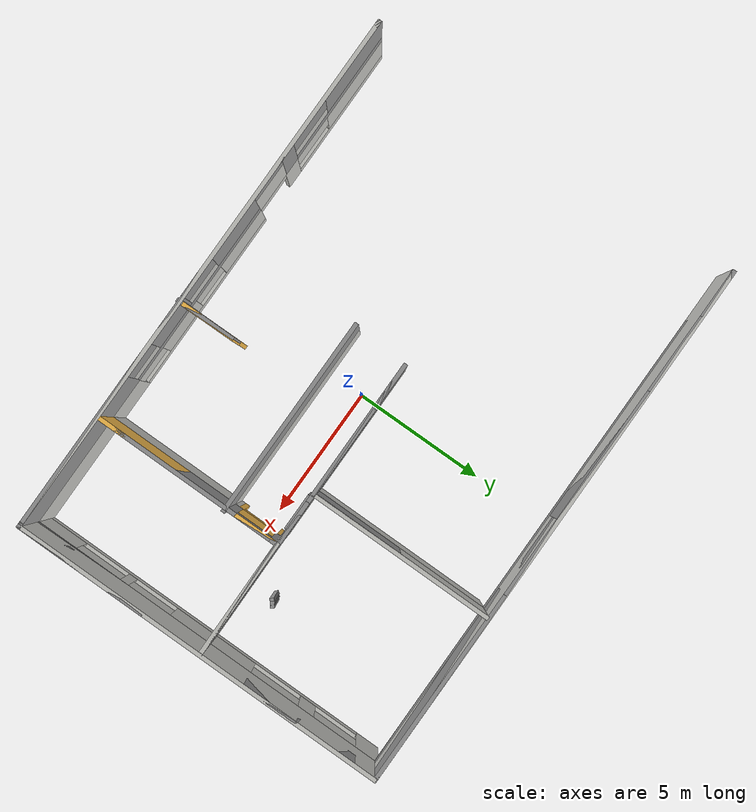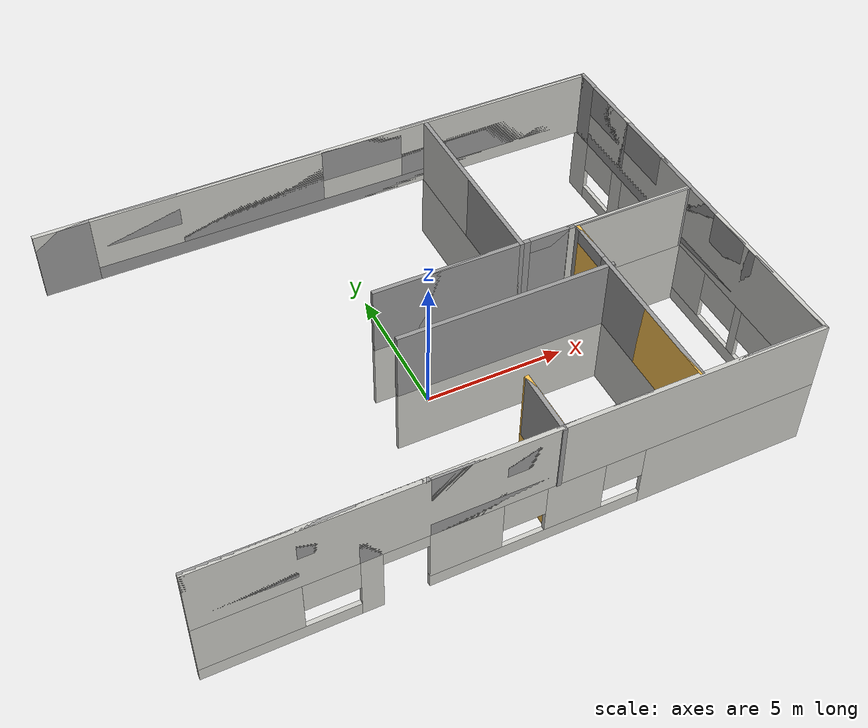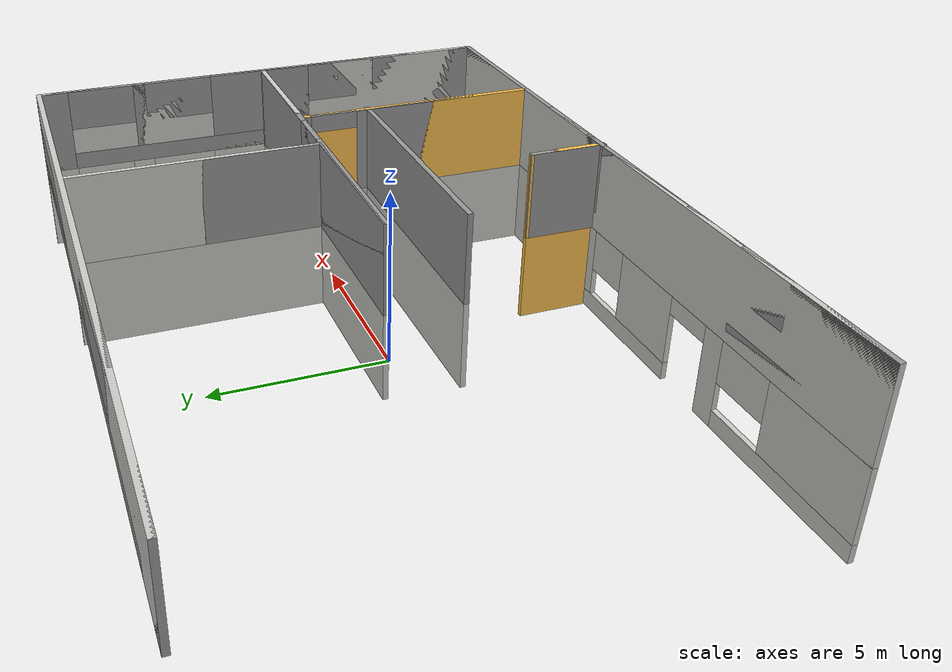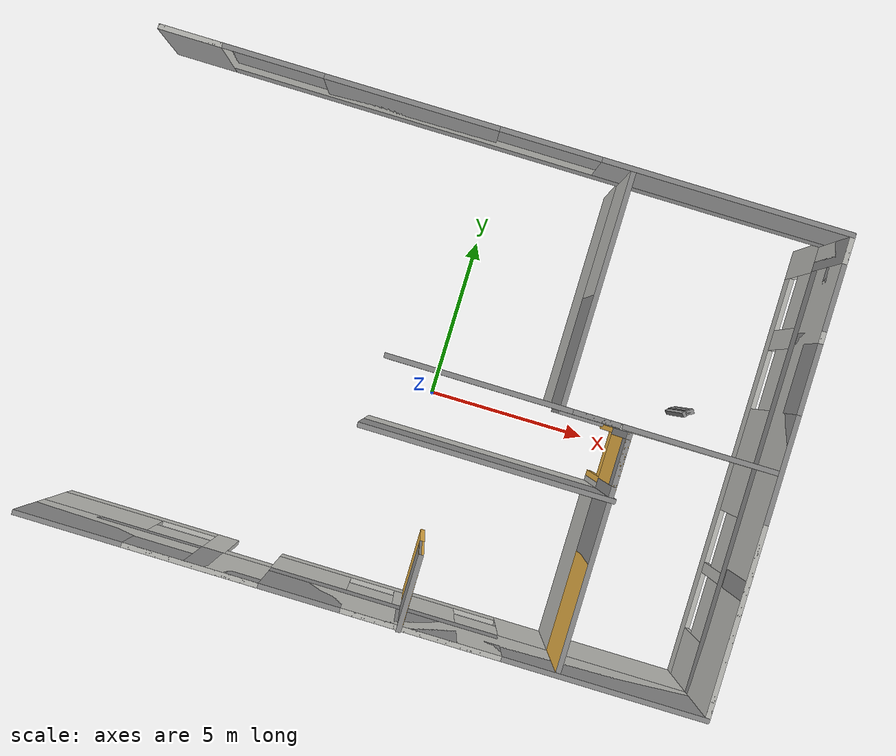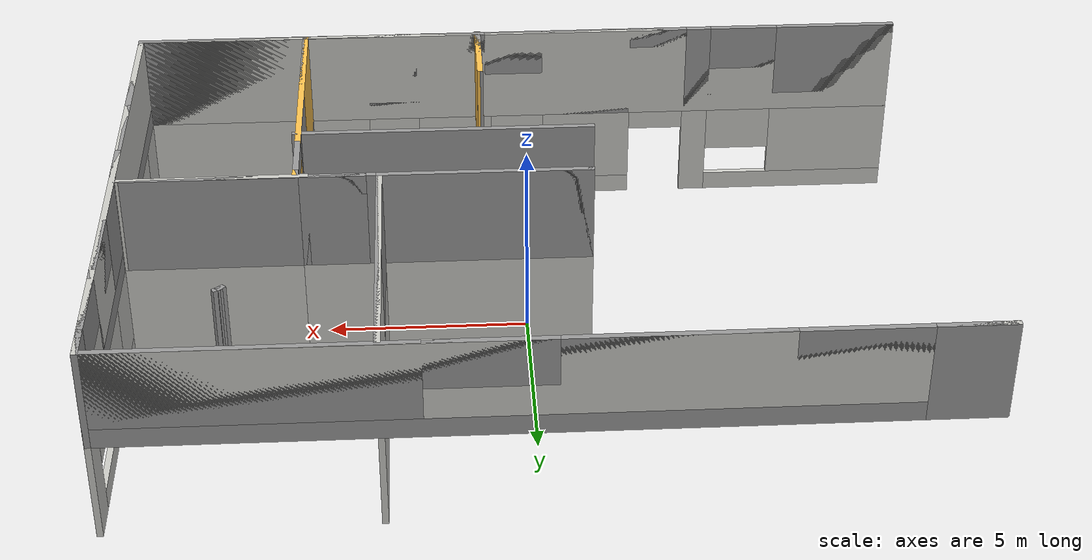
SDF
<sdf version="1.6">
 <model name="myProjectBuilding">
  <pose>-0.140832 0.553642 0 0 -0 0</pose>
  <link name="Door_9">
   <collision name="Door_9_Collision">
    <geometry><box><size>1.41879 0.2 2</size></box></geometry>
    <pose>0 0 1 0 -0 0</pose>
   </collision>
   <visual name="Door_9_Visual">
    <pose>0 0 1 0 -0 0</pose>
    <geometry><box><size>1.41879 0.2 2</size></box></geometry>
    <material>
     <script><uri>file://media/materials/scripts/gazebo.material</uri><name>Gazebo/Grey</name></script>
    </material>
   </visual>
   <pose>4.70443 0.050341 0 0 -0 0</pose>
  </link>
  <link name="Wall_1">
   <pose>10.0698 0.020848 0 0 -0 -1.5708</pose>
   <visual name="Wall_1_Visual_0">
    <pose>-6.65077 0 1.25 0 -0 0</pose>
    <geometry><box><size>0.948468 0.15 2.5</size></box></geometry>
    <material>
     <script><uri>file://media/materials/scripts/gazebo.material</uri><name>Gazebo/CeilingTiled</name></script>
     <ambient>1 1 1 1</ambient>
    </material>
    <meta><layer>0</layer></meta>
   </visual>
   <collision name="Wall_1_Collision_0">
    <geometry><box><size>0.948468 0.15 2.5</size></box></geometry>
    <pose>-6.65077 0 1.25 0 -0 0</pose>
   </collision>
   <visual name="Wall_1_Visual_1">
    <pose>0.474234 0 0.25 0 -0 0</pose>
    <geometry><box><size>13.3015 0.15 0.5</size></box></geometry>
    <material>
     <script><uri>file://media/materials/scripts/gazebo.material</uri><name>Gazebo/CeilingTiled</name></script>
     <ambient>1 1 1 1</ambient>
    </material>
    <meta><layer>0</layer></meta>
   </visual>
   <collision name="Wall_1_Collision_1">
    <geometry><box><size>13.3015 0.15 0.5</size></box></geometry>
    <pose>0.474234 0 0.25 0 -0 0</pose>
   </collision>
   <visual name="Wall_1_Visual_2">
    <pose>-4.11639 0 1.5 0 -0 0</pose>
    <geometry><box><size>0.652621 0.15 2</size></box></geometry>
    <material>
     <script><uri>file://media/materials/scripts/gazebo.material</uri><name>Gazebo/CeilingTiled</name></script>
     <ambient>1 1 1 1</ambient>
    </material>
    <meta><layer>0</layer></meta>
   </visual>
   <collision name="Wall_1_Collision_2">
    <geometry><box><size>0.652621 0.15 2</size></box></geometry>
    <pose>-4.11639 0 1.5 0 -0 0</pose>
   </collision>
   <visual name="Wall_1_Visual_3">
    <pose>-0.168769 0 1.5 0 -0 0</pose>
    <geometry><box><size>3.35994 0.15 2</size></box></geometry>
    <material>
     <script><uri>file://media/materials/scripts/gazebo.material</uri><name>Gazebo/CeilingTiled</name></script>
     <ambient>1 1 1 1</ambient>
    </material>
    <meta><layer>0</layer></meta>
   </visual>
   <collision name="Wall_1_Collision_3">
    <geometry><box><size>3.35994 0.15 2</size></box></geometry>
    <pose>-0.168769 0 1.5 0 -0 0</pose>
   </collision>
   <visual name="Wall_1_Visual_4">
    <pose>3.42421 0 1.5 0 -0 0</pose>
    <geometry><box><size>0.342006 0.15 2</size></box></geometry>
    <material>
     <script><uri>file://media/materials/scripts/gazebo.material</uri><name>Gazebo/CeilingTiled</name></script>
     <ambient>1 1 1 1</ambient>
    </material>
    <meta><layer>0</layer></meta>
   </visual>
   <collision name="Wall_1_Collision_4">
    <geometry><box><size>0.342006 0.15 2</size></box></geometry>
    <pose>3.42421 0 1.5 0 -0 0</pose>
   </collision>
   <visual name="Wall_1_Visual_5">
    <pose>6.27597 0 1.5 0 -0 0</pose>
    <geometry><box><size>1.69805 0.15 2</size></box></geometry>
    <material>
     <script><uri>file://media/materials/scripts/gazebo.material</uri><name>Gazebo/CeilingTiled</name></script>
     <ambient>1 1 1 1</ambient>
    </material>
    <meta><layer>0</layer></meta>
   </visual>
   <collision name="Wall_1_Collision_5">
    <geometry><box><size>1.69805 0.15 2</size></box></geometry>
    <pose>6.27597 0 1.5 0 -0 0</pose>
   </collision>
   <visual name="Wall_1_Visual_6">
    <pose>-5.30962 0 1.9 0 -0 0</pose>
    <geometry><box><size>1.73383 0.15 1.2</size></box></geometry>
    <material>
     <script><uri>file://media/materials/scripts/gazebo.material</uri><name>Gazebo/CeilingTiled</name></script>
     <ambient>1 1 1 1</ambient>
    </material>
    <meta><layer>0</layer></meta>
   </visual>
   <collision name="Wall_1_Collision_6">
    <geometry><box><size>1.73383 0.15 1.2</size></box></geometry>
    <pose>-5.30962 0 1.9 0 -0 0</pose>
   </collision>
   <visual name="Wall_1_Visual_7">
    <pose>-2.81941 0 1.9 0 -0 0</pose>
    <geometry><box><size>1.94135 0.15 1.2</size></box></geometry>
    <material>
     <script><uri>file://media/materials/scripts/gazebo.material</uri><name>Gazebo/CeilingTiled</name></script>
     <ambient>1 1 1 1</ambient>
    </material>
    <meta><layer>0</layer></meta>
   </visual>
   <collision name="Wall_1_Collision_7">
    <geometry><box><size>1.94135 0.15 1.2</size></box></geometry>
    <pose>-2.81941 0 1.9 0 -0 0</pose>
   </collision>
   <visual name="Wall_1_Visual_8">
    <pose>2.38221 0 1.9 0 -0 0</pose>
    <geometry><box><size>1.74201 0.15 1.2</size></box></geometry>
    <material>
     <script><uri>file://media/materials/scripts/gazebo.material</uri><name>Gazebo/CeilingTiled</name></script>
     <ambient>1 1 1 1</ambient>
    </material>
    <meta><layer>0</layer></meta>
   </visual>
   <collision name="Wall_1_Collision_8">
    <geometry><box><size>1.74201 0.15 1.2</size></box></geometry>
    <pose>2.38221 0 1.9 0 -0 0</pose>
   </collision>
   <visual name="Wall_1_Visual_9">
    <pose>4.51108 0 1.9 0 -0 0</pose>
    <geometry><box><size>1.83173 0.15 1.2</size></box></geometry>
    <material>
     <script><uri>file://media/materials/scripts/gazebo.material</uri><name>Gazebo/CeilingTiled</name></script>
     <ambient>1 1 1 1</ambient>
    </material>
    <meta><layer>0</layer></meta>
   </visual>
   <collision name="Wall_1_Collision_9">
    <geometry><box><size>1.83173 0.15 1.2</size></box></geometry>
    <pose>4.51108 0 1.9 0 -0 0</pose>
   </collision>
  </link>
  <link name="Wall_10">
   <collision name="Wall_10_Collision">
    <geometry><box><size>4.57812 0.15 2.5</size></box></geometry>
    <pose>0 0 1.25 0 -0 0</pose>
   </collision>
   <visual name="Wall_10_Visual">
    <pose>0 0 1.25 0 -0 0</pose>
    <geometry><box><size>4.57812 0.15 2.5</size></box></geometry>
    <material>
     <script><uri>file://media/materials/scripts/gazebo.material</uri><name>Gazebo/CeilingTiled</name></script>
     <ambient>1 1 1 1</ambient>
    </material>
    <meta><layer>0</layer></meta>
   </visual>
   <pose>7.6982 0.114753 0 0 -0 0.005858</pose>
  </link>
  <link name="Wall_103">
   <pose>0.019837 7.07085 2.5 0 -0 0</pose>
   <visual name="Wall_103_Visual_0">
    <pose>-9.19706 0 1.25 0 -0 0</pose>
    <geometry><box><size>1.85589 0.15 2.5</size></box></geometry>
    <material>
     <script><uri>file://media/materials/scripts/gazebo.material</uri><name>Gazebo/Grey</name></script>
     <ambient>1 1 1 1</ambient>
    </material>
    <meta><layer>1</layer></meta>
   </visual>
   <collision name="Wall_103_Collision_0">
    <geometry><box><size>1.85589 0.15 2.5</size></box></geometry>
    <pose>-9.19706 0 1.25 0 -0 0</pose>
   </collision>
   <visual name="Wall_103_Visual_1">
    <pose>0.927944 0 0.25 0 -0 0</pose>
    <geometry><box><size>18.3941 0.15 0.5</size></box></geometry>
    <material>
     <script><uri>file://media/materials/scripts/gazebo.material</uri><name>Gazebo/Grey</name></script>
     <ambient>1 1 1 1</ambient>
    </material>
    <meta><layer>1</layer></meta>
   </visual>
   <collision name="Wall_103_Collision_1">
    <geometry><box><size>18.3941 0.15 0.5</size></box></geometry>
    <pose>0.927944 0 0.25 0 -0 0</pose>
   </collision>
   <visual name="Wall_103_Visual_2">
    <pose>-2.75239 0 1.5 0 -0 0</pose>
    <geometry><box><size>5.10277 0.15 2</size></box></geometry>
    <material>
     <script><uri>file://media/materials/scripts/gazebo.material</uri><name>Gazebo/Grey</name></script>
     <ambient>1 1 1 1</ambient>
    </material>
    <meta><layer>1</layer></meta>
   </visual>
   <collision name="Wall_103_Collision_2">
    <geometry><box><size>5.10277 0.15 2</size></box></geometry>
    <pose>-2.75239 0 1.5 0 -0 0</pose>
   </collision>
   <visual name="Wall_103_Visual_3">
    <pose>6.44467 0 1.5 0 -0 0</pose>
    <geometry><box><size>7.36067 0.15 2</size></box></geometry>
    <material>
     <script><uri>file://media/materials/scripts/gazebo.material</uri><name>Gazebo/Grey</name></script>
     <ambient>1 1 1 1</ambient>
    </material>
    <meta><layer>1</layer></meta>
   </visual>
   <collision name="Wall_103_Collision_3">
    <geometry><box><size>7.36067 0.15 2</size></box></geometry>
    <pose>6.44467 0 1.5 0 -0 0</pose>
   </collision>
   <visual name="Wall_103_Visual_4">
    <pose>-6.78644 0 1.9 0 -0 0</pose>
    <geometry><box><size>2.96534 0.15 1.2</size></box></geometry>
    <material>
     <script><uri>file://media/materials/scripts/gazebo.material</uri><name>Gazebo/Grey</name></script>
     <ambient>1 1 1 1</ambient>
    </material>
    <meta><layer>1</layer></meta>
   </visual>
   <collision name="Wall_103_Collision_4">
    <geometry><box><size>2.96534 0.15 1.2</size></box></geometry>
    <pose>-6.78644 0 1.9 0 -0 0</pose>
   </collision>
   <visual name="Wall_103_Visual_5">
    <pose>1.28167 0 1.9 0 -0 0</pose>
    <geometry><box><size>2.96534 0.15 1.2</size></box></geometry>
    <material>
     <script><uri>file://media/materials/scripts/gazebo.material</uri><name>Gazebo/Grey</name></script>
     <ambient>1 1 1 1</ambient>
    </material>
    <meta><layer>1</layer></meta>
   </visual>
   <collision name="Wall_103_Collision_5">
    <geometry><box><size>2.96534 0.15 1.2</size></box></geometry>
    <pose>1.28167 0 1.9 0 -0 0</pose>
   </collision>
  </link>
  <link name="Wall_104">
   <pose>10.0698 0.020848 2.5 0 -0 -1.5708</pose>
   <visual name="Wall_104_Visual_0">
    <pose>-6.6667 0 1.25 0 -0 0</pose>
    <geometry><box><size>0.916608 0.15 2.5</size></box></geometry>
    <material>
     <script><uri>file://media/materials/scripts/gazebo.material</uri><name>Gazebo/Grey</name></script>
     <ambient>1 1 1 1</ambient>
    </material>
    <meta><layer>1</layer></meta>
   </visual>
   <collision name="Wall_104_Collision_0">
    <geometry><box><size>0.916608 0.15 2.5</size></box></geometry>
    <pose>-6.6667 0 1.25 0 -0 0</pose>
   </collision>
   <visual name="Wall_104_Visual_1">
    <pose>0.458304 0 0.25 0 -0 0</pose>
    <geometry><box><size>13.3334 0.15 0.5</size></box></geometry>
    <material>
     <script><uri>file://media/materials/scripts/gazebo.material</uri><name>Gazebo/Grey</name></script>
     <ambient>1 1 1 1</ambient>
    </material>
    <meta><layer>1</layer></meta>
   </visual>
   <collision name="Wall_104_Collision_1">
    <geometry><box><size>13.3334 0.15 0.5</size></box></geometry>
    <pose>0.458304 0 0.25 0 -0 0</pose>
   </collision>
   <visual name="Wall_104_Visual_2">
    <pose>-4.07315 0 1.5 0 -0 0</pose>
    <geometry><box><size>0.356824 0.15 2</size></box></geometry>
    <material>
     <script><uri>file://media/materials/scripts/gazebo.material</uri><name>Gazebo/Grey</name></script>
     <ambient>1 1 1 1</ambient>
    </material>
    <meta><layer>1</layer></meta>
   </visual>
   <collision name="Wall_104_Collision_2">
    <geometry><box><size>0.356824 0.15 2</size></box></geometry>
    <pose>-4.07315 0 1.5 0 -0 0</pose>
   </collision>
   <visual name="Wall_104_Visual_3">
    <pose>-0.222028 0 1.5 0 -0 0</pose>
    <geometry><box><size>3.19448 0.15 2</size></box></geometry>
    <material>
     <script><uri>file://media/materials/scripts/gazebo.material</uri><name>Gazebo/Grey</name></script>
     <ambient>1 1 1 1</ambient>
    </material>
    <meta><layer>1</layer></meta>
   </visual>
   <collision name="Wall_104_Collision_3">
    <geometry><box><size>3.19448 0.15 2</size></box></geometry>
    <pose>-0.222028 0 1.5 0 -0 0</pose>
   </collision>
   <visual name="Wall_104_Visual_4">
    <pose>3.31023 0 1.5 0 -0 0</pose>
    <geometry><box><size>0.56446 0.15 2</size></box></geometry>
    <material>
     <script><uri>file://media/materials/scripts/gazebo.material</uri><name>Gazebo/Grey</name></script>
     <ambient>1 1 1 1</ambient>
    </material>
    <meta><layer>1</layer></meta>
   </visual>
   <collision name="Wall_104_Collision_4">
    <geometry><box><size>0.56446 0.15 2</size></box></geometry>
    <pose>3.31023 0 1.5 0 -0 0</pose>
   </collision>
   <visual name="Wall_104_Visual_5">
    <pose>6.25335 0 1.5 0 -0 0</pose>
    <geometry><box><size>1.74331 0.15 2</size></box></geometry>
    <material>
     <script><uri>file://media/materials/scripts/gazebo.material</uri><name>Gazebo/Grey</name></script>
     <ambient>1 1 1 1</ambient>
    </material>
    <meta><layer>1</layer></meta>
   </visual>
   <collision name="Wall_104_Collision_5">
    <geometry><box><size>1.74331 0.15 2</size></box></geometry>
    <pose>6.25335 0 1.5 0 -0 0</pose>
   </collision>
   <visual name="Wall_104_Visual_6">
    <pose>-5.22998 0 1.9 0 -0 0</pose>
    <geometry><box><size>1.95682 0.15 1.2</size></box></geometry>
    <material>
     <script><uri>file://media/materials/scripts/gazebo.material</uri><name>Gazebo/Grey</name></script>
     <ambient>1 1 1 1</ambient>
    </material>
    <meta><layer>1</layer></meta>
   </visual>
   <collision name="Wall_104_Collision_6">
    <geometry><box><size>1.95682 0.15 1.2</size></box></geometry>
    <pose>-5.22998 0 1.9 0 -0 0</pose>
   </collision>
   <visual name="Wall_104_Visual_7">
    <pose>-2.85701 0 1.9 0 -0 0</pose>
    <geometry><box><size>2.07547 0.15 1.2</size></box></geometry>
    <material>
     <script><uri>file://media/materials/scripts/gazebo.material</uri><name>Gazebo/Grey</name></script>
     <ambient>1 1 1 1</ambient>
    </material>
    <meta><layer>1</layer></meta>
   </visual>
   <collision name="Wall_104_Collision_7">
    <geometry><box><size>2.07547 0.15 1.2</size></box></geometry>
    <pose>-2.85701 0 1.9 0 -0 0</pose>
   </collision>
   <visual name="Wall_104_Visual_8">
    <pose>2.20161 0 1.9 0 -0 0</pose>
    <geometry><box><size>1.65279 0.15 1.2</size></box></geometry>
    <material>
     <script><uri>file://media/materials/scripts/gazebo.material</uri><name>Gazebo/Grey</name></script>
     <ambient>1 1 1 1</ambient>
    </material>
    <meta><layer>1</layer></meta>
   </visual>
   <collision name="Wall_104_Collision_8">
    <geometry><box><size>1.65279 0.15 1.2</size></box></geometry>
    <pose>2.20161 0 1.9 0 -0 0</pose>
   </collision>
   <visual name="Wall_104_Visual_9">
    <pose>4.48708 0 1.9 0 -0 0</pose>
    <geometry><box><size>1.78923 0.15 1.2</size></box></geometry>
    <material>
     <script><uri>file://media/materials/scripts/gazebo.material</uri><name>Gazebo/Grey</name></script>
     <ambient>1 1 1 1</ambient>
    </material>
    <meta><layer>1</layer></meta>
   </visual>
   <collision name="Wall_104_Collision_9">
    <geometry><box><size>1.78923 0.15 1.2</size></box></geometry>
    <pose>4.48708 0 1.9 0 -0 0</pose>
   </collision>
  </link>
  <link name="Wall_105">
   <pose>0.019837 -7.02915 2.5 0 -0 3.14159</pose>
   <visual name="Wall_105_Visual_0">
    <pose>-7.09724 0 1.25 0 -0 0</pose>
    <geometry><box><size>6.05553 0.15 2.5</size></box></geometry>
    <material>
     <script><uri>file://media/materials/scripts/gazebo.material</uri><name>Gazebo/Grey</name></script>
     <ambient>1 1 1 1</ambient>
    </material>
    <meta><layer>1</layer></meta>
   </visual>
   <collision name="Wall_105_Collision_0">
    <geometry><box><size>6.05553 0.15 2.5</size></box></geometry>
    <pose>-7.09724 0 1.25 0 -0 0</pose>
   </collision>
   <visual name="Wall_105_Visual_1">
    <pose>4.8469 0 1.25 0 -0 0</pose>
    <geometry><box><size>0.658901 0.15 2.5</size></box></geometry>
    <material>
     <script><uri>file://media/materials/scripts/gazebo.material</uri><name>Gazebo/Grey</name></script>
     <ambient>1 1 1 1</ambient>
    </material>
    <meta><layer>1</layer></meta>
   </visual>
   <collision name="Wall_105_Collision_1">
    <geometry><box><size>0.658901 0.15 2.5</size></box></geometry>
    <pose>4.8469 0 1.25 0 -0 0</pose>
   </collision>
   <visual name="Wall_105_Visual_2">
    <pose>-0.53553 0 0.25 0 -0 0</pose>
    <geometry><box><size>7.06788 0.15 0.5</size></box></geometry>
    <material>
     <script><uri>file://media/materials/scripts/gazebo.material</uri><name>Gazebo/Grey</name></script>
     <ambient>1 1 1 1</ambient>
    </material>
    <meta><layer>1</layer></meta>
   </visual>
   <collision name="Wall_105_Collision_2">
    <geometry><box><size>7.06788 0.15 0.5</size></box></geometry>
    <pose>-0.53553 0 0.25 0 -0 0</pose>
   </collision>
   <visual name="Wall_105_Visual_3">
    <pose>7.65067 0 0.25 0 -0 0</pose>
    <geometry><box><size>4.94865 0.15 0.5</size></box></geometry>
    <material>
     <script><uri>file://media/materials/scripts/gazebo.material</uri><name>Gazebo/Grey</name></script>
     <ambient>1 1 1 1</ambient>
    </material>
    <meta><layer>1</layer></meta>
   </visual>
   <collision name="Wall_105_Collision_3">
    <geometry><box><size>4.94865 0.15 0.5</size></box></geometry>
    <pose>7.65067 0 0.25 0 -0 0</pose>
   </collision>
   <visual name="Wall_105_Visual_4">
    <pose>-1.84525 0 1.5 0 -0 0</pose>
    <geometry><box><size>1.83993 0.15 2</size></box></geometry>
    <material>
     <script><uri>file://media/materials/scripts/gazebo.material</uri><name>Gazebo/Grey</name></script>
     <ambient>1 1 1 1</ambient>
    </material>
    <meta><layer>1</layer></meta>
   </visual>
   <collision name="Wall_105_Collision_4">
    <geometry><box><size>1.83993 0.15 2</size></box></geometry>
    <pose>-1.84525 0 1.5 0 -0 0</pose>
   </collision>
   <visual name="Wall_105_Visual_5">
    <pose>1.80734 0 1.5 0 -0 0</pose>
    <geometry><box><size>2.38213 0.15 2</size></box></geometry>
    <material>
     <script><uri>file://media/materials/scripts/gazebo.material</uri><name>Gazebo/Grey</name></script>
     <ambient>1 1 1 1</ambient>
    </material>
    <meta><layer>1</layer></meta>
   </visual>
   <collision name="Wall_105_Collision_5">
    <geometry><box><size>2.38213 0.15 2</size></box></geometry>
    <pose>1.80734 0 1.5 0 -0 0</pose>
   </collision>
   <visual name="Wall_105_Visual_6">
    <pose>1.80734 0 1.5 0 -0 0</pose>
    <geometry><box><size>2.38213 0.15 2</size></box></geometry>
    <material>
     <script><uri>file://media/materials/scripts/gazebo.material</uri><name>Gazebo/Grey</name></script>
     <ambient>1 1 1 1</ambient>
    </material>
    <meta><layer>1</layer></meta>
   </visual>
   <collision name="Wall_105_Collision_6">
    <geometry><box><size>2.38213 0.15 2</size></box></geometry>
    <pose>1.80734 0 1.5 0 -0 0</pose>
   </collision>
   <visual name="Wall_105_Visual_7">
    <pose>8.54074 0 1.5 0 -0 0</pose>
    <geometry><box><size>3.16851 0.15 2</size></box></geometry>
    <material>
     <script><uri>file://media/materials/scripts/gazebo.material</uri><name>Gazebo/Grey</name></script>
     <ambient>1 1 1 1</ambient>
    </material>
    <meta><layer>1</layer></meta>
   </visual>
   <collision name="Wall_105_Collision_7">
    <geometry><box><size>3.16851 0.15 2</size></box></geometry>
    <pose>8.54074 0 1.5 0 -0 0</pose>
   </collision>
   <visual name="Wall_105_Visual_8">
    <pose>-3.41734 0 1.9 0 -0 0</pose>
    <geometry><box><size>1.30426 0.15 1.2</size></box></geometry>
    <material>
     <script><uri>file://media/materials/scripts/gazebo.material</uri><name>Gazebo/Grey</name></script>
     <ambient>1 1 1 1</ambient>
    </material>
    <meta><layer>1</layer></meta>
   </visual>
   <collision name="Wall_105_Collision_8">
    <geometry><box><size>1.30426 0.15 1.2</size></box></geometry>
    <pose>-3.41734 0 1.9 0 -0 0</pose>
   </collision>
   <visual name="Wall_105_Visual_9">
    <pose>6.06642 0 1.9 0 -0 0</pose>
    <geometry><box><size>1.78014 0.15 1.2</size></box></geometry>
    <material>
     <script><uri>file://media/materials/scripts/gazebo.material</uri><name>Gazebo/Grey</name></script>
     <ambient>1 1 1 1</ambient>
    </material>
    <meta><layer>1</layer></meta>
   </visual>
   <collision name="Wall_105_Collision_9">
    <geometry><box><size>1.78014 0.15 1.2</size></box></geometry>
    <pose>6.06642 0 1.9 0 -0 0</pose>
   </collision>
   <visual name="Wall_105_Visual_10">
    <pose>-0.154503 0 1.9 0 -0 0</pose>
    <geometry><box><size>1.54155 0.15 1.2</size></box></geometry>
    <material>
     <script><uri>file://media/materials/scripts/gazebo.material</uri><name>Gazebo/Grey</name></script>
     <ambient>1 1 1 1</ambient>
    </material>
    <meta><layer>1</layer></meta>
   </visual>
   <collision name="Wall_105_Collision_10">
    <geometry><box><size>1.54155 0.15 1.2</size></box></geometry>
    <pose>-0.154503 0 1.9 0 -0 0</pose>
   </collision>
   <visual name="Wall_105_Visual_11">
    <pose>3.75793 0 2.25 0 -0 0</pose>
    <geometry><box><size>1.51904 0.15 0.5</size></box></geometry>
    <material>
     <script><uri>file://media/materials/scripts/gazebo.material</uri><name>Gazebo/Grey</name></script>
     <ambient>1 1 1 1</ambient>
    </material>
    <meta><layer>1</layer></meta>
   </visual>
   <collision name="Wall_105_Collision_11">
    <geometry><box><size>1.51904 0.15 0.5</size></box></geometry>
    <pose>3.75793 0 2.25 0 -0 0</pose>
   </collision>
   <visual name="Wall_105_Visual_12">
    <pose>3.75793 0 2.25 0 -0 0</pose>
    <geometry><box><size>1.51904 0.15 0.5</size></box></geometry>
    <material>
     <script><uri>file://media/materials/scripts/gazebo.material</uri><name>Gazebo/Grey</name></script>
     <ambient>1 1 1 1</ambient>
    </material>
    <meta><layer>1</layer></meta>
   </visual>
   <collision name="Wall_105_Collision_12">
    <geometry><box><size>1.51904 0.15 0.5</size></box></geometry>
    <pose>3.75793 0 2.25 0 -0 0</pose>
   </collision>
  </link>
  <link name="Wall_112">
   <pose>4.29399 0.127723 2.5 0 -0 0</pose>
   <visual name="Wall_112_Visual_0">
    <pose>-3.00932 0 1.25 0 -0 0</pose>
    <geometry><box><size>5.48137 0.15 2.5</size></box></geometry>
    <material>
     <script><uri>file://media/materials/scripts/gazebo.material</uri><name>Gazebo/Grey</name></script>
     <ambient>1 1 1 1</ambient>
    </material>
    <meta><layer>1</layer></meta>
   </visual>
   <collision name="Wall_112_Collision_0">
    <geometry><box><size>5.48137 0.15 2.5</size></box></geometry>
    <pose>-3.00932 0 1.25 0 -0 0</pose>
   </collision>
   <visual name="Wall_112_Visual_1">
    <pose>3.45764 0 1.25 0 -0 0</pose>
    <geometry><box><size>4.58472 0.15 2.5</size></box></geometry>
    <material>
     <script><uri>file://media/materials/scripts/gazebo.material</uri><name>Gazebo/Grey</name></script>
     <ambient>1 1 1 1</ambient>
    </material>
    <meta><layer>1</layer></meta>
   </visual>
   <collision name="Wall_112_Collision_1">
    <geometry><box><size>4.58472 0.15 2.5</size></box></geometry>
    <pose>3.45764 0 1.25 0 -0 0</pose>
   </collision>
   <visual name="Wall_112_Visual_2">
    <pose>0.448326 0 2.25 0 -0 0</pose>
    <geometry><box><size>1.43392 0.15 0.5</size></box></geometry>
    <material>
     <script><uri>file://media/materials/scripts/gazebo.material</uri><name>Gazebo/Grey</name></script>
     <ambient>1 1 1 1</ambient>
    </material>
    <meta><layer>1</layer></meta>
   </visual>
   <collision name="Wall_112_Collision_2">
    <geometry><box><size>1.43392 0.15 0.5</size></box></geometry>
    <pose>0.448326 0 2.25 0 -0 0</pose>
   </collision>
  </link>
  <link name="Wall_119">
   <collision name="Wall_119_Collision">
    <geometry><box><size>7 0.15 2.5</size></box></geometry>
    <pose>0 0 1.25 0 -0 0</pose>
   </collision>
   <visual name="Wall_119_Visual">
    <pose>0 0 1.25 0 -0 0</pose>
    <geometry><box><size>7 0.15 2.5</size></box></geometry>
    <material>
     <script><uri>file://media/materials/scripts/gazebo.material</uri><name>Gazebo/Grey</name></script>
     <ambient>1 1 1 1</ambient>
    </material>
    <meta><layer>1</layer></meta>
   </visual>
   <pose>3.71899 3.55272 2.5 0 -0 -1.5708</pose>
  </link>
  <link name="Wall_12">
   <collision name="Wall_12_Collision">
    <geometry><box><size>5.5 0.15 2.5</size></box></geometry>
    <pose>0 0 1.25 0 -0 0</pose>
   </collision>
   <visual name="Wall_12_Visual">
    <pose>0 0 1.25 0 -0 0</pose>
    <geometry><box><size>5.5 0.15 2.5</size></box></geometry>
    <material>
     <script><uri>file://media/materials/scripts/gazebo.material</uri><name>Gazebo/CeilingTiled</name></script>
     <ambient>1 0.764706 0.305882 1</ambient>
    </material>
    <meta><layer>0</layer></meta>
   </visual>
   <pose>5.72081 -4.29298 0 0 -0 -1.5708</pose>
  </link>
  <link name="Wall_122">
   <collision name="Wall_122_Collision">
    <geometry><box><size>7.5 0.15 2.5</size></box></geometry>
    <pose>0 0 1.25 0 -0 0</pose>
   </collision>
   <visual name="Wall_122_Visual">
    <pose>0 0 1.25 0 -0 0</pose>
    <geometry><box><size>7.5 0.15 2.5</size></box></geometry>
    <material>
     <script><uri>file://media/materials/scripts/gazebo.material</uri><name>Gazebo/Grey</name></script>
     <ambient>1 1 1 1</ambient>
    </material>
    <meta><layer>1</layer></meta>
   </visual>
   <pose>2.13529 -1.93538 2.5 0 -0 0</pose>
  </link>
  <link name="Wall_130">
   <pose>5.72081 -3.49298 2.5 0 -0 1.5708</pose>
   <visual name="Wall_130_Visual_0">
    <pose>-0.801949 0 1.25 0 -0 0</pose>
    <geometry><box><size>5.4961 0.15 2.5</size></box></geometry>
    <material>
     <script><uri>file://media/materials/scripts/gazebo.material</uri><name>Gazebo/Grey</name></script>
     <ambient>1 1 1 1</ambient>
    </material>
    <meta><layer>1</layer></meta>
   </visual>
   <collision name="Wall_130_Collision_0">
    <geometry><box><size>5.4961 0.15 2.5</size></box></geometry>
    <pose>-0.801949 0 1.25 0 -0 0</pose>
   </collision>
   <visual name="Wall_130_Visual_1">
    <pose>3.43535 0 1.25 0 -0 0</pose>
    <geometry><box><size>0.229304 0.15 2.5</size></box></geometry>
    <material>
     <script><uri>file://media/materials/scripts/gazebo.material</uri><name>Gazebo/Grey</name></script>
     <ambient>1 1 1 1</ambient>
    </material>
    <meta><layer>1</layer></meta>
   </visual>
   <collision name="Wall_130_Collision_1">
    <geometry><box><size>0.229304 0.15 2.5</size></box></geometry>
    <pose>3.43535 0 1.25 0 -0 0</pose>
   </collision>
   <visual name="Wall_130_Visual_2">
    <pose>2.6334 0 2.25 0 -0 0</pose>
    <geometry><box><size>1.3746 0.15 0.5</size></box></geometry>
    <material>
     <script><uri>file://media/materials/scripts/gazebo.material</uri><name>Gazebo/Grey</name></script>
     <ambient>1 1 1 1</ambient>
    </material>
    <meta><layer>1</layer></meta>
   </visual>
   <collision name="Wall_130_Collision_2">
    <geometry><box><size>1.3746 0.15 0.5</size></box></geometry>
    <pose>2.6334 0 2.25 0 -0 0</pose>
   </collision>
  </link>
  <link name="Wall_136">
   <collision name="Wall_136_Collision">
    <geometry><box><size>2.25 0.15 2.5</size></box></geometry>
    <pose>0 0 1.25 0 -0 0</pose>
   </collision>
   <visual name="Wall_136_Visual">
    <pose>0 0 1.25 0 -0 0</pose>
    <geometry><box><size>2.25 0.15 2.5</size></box></geometry>
    <material>
     <script><uri>file://media/materials/scripts/gazebo.material</uri><name>Gazebo/Grey</name></script>
     <ambient>1 1 1 1</ambient>
    </material>
    <meta><layer>1</layer></meta>
   </visual>
   <pose>1.12989 -6.02085 2.5 0 -0 -1.5708</pose>
  </link>
  <link name="Wall_14">
   <collision name="Wall_14_Collision">
    <geometry><box><size>7.5 0.15 2.5</size></box></geometry>
    <pose>0 0 1.25 0 -0 0</pose>
   </collision>
   <visual name="Wall_14_Visual">
    <pose>0 0 1.25 0 -0 0</pose>
    <geometry><box><size>7.5 0.15 2.5</size></box></geometry>
    <material>
     <script><uri>file://media/materials/scripts/gazebo.material</uri><name>Gazebo/CeilingTiled</name></script>
     <ambient>1 1 1 1</ambient>
    </material>
    <meta><layer>0</layer></meta>
   </visual>
   <pose>2.13529 -1.93538 0 0 -0 0</pose>
  </link>
  <link name="Wall_2">
   <pose>0.019837 -7.02915 0 0 -0 3.14159</pose>
   <visual name="Wall_2_Visual_0">
    <pose>-7.11192 0 1.25 0 -0 0</pose>
    <geometry><box><size>6.02617 0.15 2.5</size></box></geometry>
    <material>
     <script><uri>file://media/materials/scripts/gazebo.material</uri><name>Gazebo/CeilingTiled</name></script>
     <ambient>1 1 1 1</ambient>
    </material>
    <meta><layer>0</layer></meta>
   </visual>
   <collision name="Wall_2_Collision_0">
    <geometry><box><size>6.02617 0.15 2.5</size></box></geometry>
    <pose>-7.11192 0 1.25 0 -0 0</pose>
   </collision>
   <visual name="Wall_2_Visual_1">
    <pose>4.81818 0 1.25 0 -0 0</pose>
    <geometry><box><size>0.692214 0.15 2.5</size></box></geometry>
    <material>
     <script><uri>file://media/materials/scripts/gazebo.material</uri><name>Gazebo/CeilingTiled</name></script>
     <ambient>1 1 1 1</ambient>
    </material>
    <meta><layer>0</layer></meta>
   </visual>
   <collision name="Wall_2_Collision_1">
    <geometry><box><size>0.692214 0.15 2.5</size></box></geometry>
    <pose>4.81818 0 1.25 0 -0 0</pose>
   </collision>
   <visual name="Wall_2_Visual_2">
    <pose>-0.541304 0 0.25 0 -0 0</pose>
    <geometry><box><size>7.11506 0.15 0.5</size></box></geometry>
    <material>
     <script><uri>file://media/materials/scripts/gazebo.material</uri><name>Gazebo/CeilingTiled</name></script>
     <ambient>1 1 1 1</ambient>
    </material>
    <meta><layer>0</layer></meta>
   </visual>
   <collision name="Wall_2_Collision_2">
    <geometry><box><size>7.11506 0.15 0.5</size></box></geometry>
    <pose>-0.541304 0 0.25 0 -0 0</pose>
   </collision>
   <visual name="Wall_2_Visual_3">
    <pose>7.64464 0 0.25 0 -0 0</pose>
    <geometry><box><size>4.96072 0.15 0.5</size></box></geometry>
    <material>
     <script><uri>file://media/materials/scripts/gazebo.material</uri><name>Gazebo/CeilingTiled</name></script>
     <ambient>1 1 1 1</ambient>
    </material>
    <meta><layer>0</layer></meta>
   </visual>
   <collision name="Wall_2_Collision_3">
    <geometry><box><size>4.96072 0.15 0.5</size></box></geometry>
    <pose>7.64464 0 0.25 0 -0 0</pose>
   </collision>
   <visual name="Wall_2_Visual_4">
    <pose>-1.75874 0 1.5 0 -0 0</pose>
    <geometry><box><size>1.95875 0.15 2</size></box></geometry>
    <material>
     <script><uri>file://media/materials/scripts/gazebo.material</uri><name>Gazebo/CeilingTiled</name></script>
     <ambient>1 1 1 1</ambient>
    </material>
    <meta><layer>0</layer></meta>
   </visual>
   <collision name="Wall_2_Collision_4">
    <geometry><box><size>1.95875 0.15 2</size></box></geometry>
    <pose>-1.75874 0 1.5 0 -0 0</pose>
   </collision>
   <visual name="Wall_2_Visual_5">
    <pose>1.83244 0 1.5 0 -0 0</pose>
    <geometry><box><size>2.36758 0.15 2</size></box></geometry>
    <material>
     <script><uri>file://media/materials/scripts/gazebo.material</uri><name>Gazebo/CeilingTiled</name></script>
     <ambient>1 1 1 1</ambient>
    </material>
    <meta><layer>0</layer></meta>
   </visual>
   <collision name="Wall_2_Collision_5">
    <geometry><box><size>2.36758 0.15 2</size></box></geometry>
    <pose>1.83244 0 1.5 0 -0 0</pose>
   </collision>
   <visual name="Wall_2_Visual_6">
    <pose>1.83244 0 1.5 0 -0 0</pose>
    <geometry><box><size>2.36758 0.15 2</size></box></geometry>
    <material>
     <script><uri>file://media/materials/scripts/gazebo.material</uri><name>Gazebo/CeilingTiled</name></script>
     <ambient>1 1 1 1</ambient>
    </material>
    <meta><layer>0</layer></meta>
   </visual>
   <collision name="Wall_2_Collision_6">
    <geometry><box><size>2.36758 0.15 2</size></box></geometry>
    <pose>1.83244 0 1.5 0 -0 0</pose>
   </collision>
   <visual name="Wall_2_Visual_7">
    <pose>8.51565 0 1.5 0 -0 0</pose>
    <geometry><box><size>3.2187 0.15 2</size></box></geometry>
    <material>
     <script><uri>file://media/materials/scripts/gazebo.material</uri><name>Gazebo/CeilingTiled</name></script>
     <ambient>1 1 1 1</ambient>
    </material>
    <meta><layer>0</layer></meta>
   </visual>
   <collision name="Wall_2_Collision_7">
    <geometry><box><size>3.2187 0.15 2</size></box></geometry>
    <pose>8.51565 0 1.5 0 -0 0</pose>
   </collision>
   <visual name="Wall_2_Visual_8">
    <pose>-3.41847 0 1.9 0 -0 0</pose>
    <geometry><box><size>1.36072 0.15 1.2</size></box></geometry>
    <material>
     <script><uri>file://media/materials/scripts/gazebo.material</uri><name>Gazebo/CeilingTiled</name></script>
     <ambient>1 1 1 1</ambient>
    </material>
    <meta><layer>0</layer></meta>
   </visual>
   <collision name="Wall_2_Collision_8">
    <geometry><box><size>1.36072 0.15 1.2</size></box></geometry>
    <pose>-3.41847 0 1.9 0 -0 0</pose>
   </collision>
   <visual name="Wall_2_Visual_9">
    <pose>6.03529 0 1.9 0 -0 0</pose>
    <geometry><box><size>1.74201 0.15 1.2</size></box></geometry>
    <material>
     <script><uri>file://media/materials/scripts/gazebo.material</uri><name>Gazebo/CeilingTiled</name></script>
     <ambient>1 1 1 1</ambient>
    </material>
    <meta><layer>0</layer></meta>
   </visual>
   <collision name="Wall_2_Collision_9">
    <geometry><box><size>1.74201 0.15 1.2</size></box></geometry>
    <pose>6.03529 0 1.9 0 -0 0</pose>
   </collision>
   <visual name="Wall_2_Visual_10">
    <pose>-0.065358 0 1.9 0 -0 0</pose>
    <geometry><box><size>1.42801 0.15 1.2</size></box></geometry>
    <material>
     <script><uri>file://media/materials/scripts/gazebo.material</uri><name>Gazebo/CeilingTiled</name></script>
     <ambient>1 1 1 1</ambient>
    </material>
    <meta><layer>0</layer></meta>
   </visual>
   <collision name="Wall_2_Collision_10">
    <geometry><box><size>1.42801 0.15 1.2</size></box></geometry>
    <pose>-0.065358 0 1.9 0 -0 0</pose>
   </collision>
   <visual name="Wall_2_Visual_11">
    <pose>3.74415 0 2.25 0 -0 0</pose>
    <geometry><box><size>1.45585 0.15 0.5</size></box></geometry>
    <material>
     <script><uri>file://media/materials/scripts/gazebo.material</uri><name>Gazebo/CeilingTiled</name></script>
     <ambient>1 1 1 1</ambient>
    </material>
    <meta><layer>0</layer></meta>
   </visual>
   <collision name="Wall_2_Collision_11">
    <geometry><box><size>1.45585 0.15 0.5</size></box></geometry>
    <pose>3.74415 0 2.25 0 -0 0</pose>
   </collision>
   <visual name="Wall_2_Visual_12">
    <pose>3.74415 0 2.25 0 -0 0</pose>
    <geometry><box><size>1.45585 0.15 0.5</size></box></geometry>
    <material>
     <script><uri>file://media/materials/scripts/gazebo.material</uri><name>Gazebo/CeilingTiled</name></script>
     <ambient>1 1 1 1</ambient>
    </material>
    <meta><layer>0</layer></meta>
   </visual>
   <collision name="Wall_2_Collision_12">
    <geometry><box><size>1.45585 0.15 0.5</size></box></geometry>
    <pose>3.74415 0 2.25 0 -0 0</pose>
   </collision>
  </link>
  <link name="Wall_21">
   <collision name="Wall_21_Collision">
    <geometry><box><size>2.01953 0.15 2.5</size></box></geometry>
    <pose>0 0 1.25 0 -0 0</pose>
   </collision>
   <visual name="Wall_21_Visual">
    <pose>0 0 1.25 0 -0 0</pose>
    <geometry><box><size>2.01953 0.15 2.5</size></box></geometry>
    <material>
     <script><uri>file://media/materials/scripts/gazebo.material</uri><name>Gazebo/Grey</name></script>
     <ambient>1 0.764706 0.305882 1</ambient>
    </material>
    <meta><layer>0</layer></meta>
   </visual>
   <pose>1.13476 -5.9056 0 0 -0 -1.56558</pose>
  </link>
  <link name="Wall_34">
   <pose>5.72081 -0.817977 0 0 -0 1.5708</pose>
   <visual name="Wall_34_Visual_0">
    <pose>-0.786044 0 1.25 0 -0 0</pose>
    <geometry><box><size>0.177913 0.15 2.5</size></box></geometry>
    <material>
     <script><uri>file://media/materials/scripts/gazebo.material</uri><name>Gazebo/Grey</name></script>
     <ambient>1 0.764706 0.305882 1</ambient>
    </material>
    <meta><layer>0</layer></meta>
   </visual>
   <collision name="Wall_34_Collision_0">
    <geometry><box><size>0.177913 0.15 2.5</size></box></geometry>
    <pose>-0.786044 0 1.25 0 -0 0</pose>
   </collision>
   <visual name="Wall_34_Visual_1">
    <pose>0.785383 0 1.25 0 -0 0</pose>
    <geometry><box><size>0.179234 0.15 2.5</size></box></geometry>
    <material>
     <script><uri>file://media/materials/scripts/gazebo.material</uri><name>Gazebo/Grey</name></script>
     <ambient>1 0.764706 0.305882 1</ambient>
    </material>
    <meta><layer>0</layer></meta>
   </visual>
   <collision name="Wall_34_Collision_1">
    <geometry><box><size>0.179234 0.15 2.5</size></box></geometry>
    <pose>0.785383 0 1.25 0 -0 0</pose>
   </collision>
   <visual name="Wall_34_Visual_2">
    <pose>-0.000661 0 2.25 0 -0 0</pose>
    <geometry><box><size>1.39285 0.15 0.5</size></box></geometry>
    <material>
     <script><uri>file://media/materials/scripts/gazebo.material</uri><name>Gazebo/Grey</name></script>
     <ambient>1 0.764706 0.305882 1</ambient>
    </material>
    <meta><layer>0</layer></meta>
   </visual>
   <collision name="Wall_34_Collision_2">
    <geometry><box><size>1.39285 0.15 0.5</size></box></geometry>
    <pose>-0.000661 0 2.25 0 -0 0</pose>
   </collision>
  </link>
  <link name="Wall_36">
   <collision name="Wall_36_Collision">
    <geometry><box><size>0.25 0.15 2.5</size></box></geometry>
    <pose>0 0 1.25 0 -0 0</pose>
   </collision>
   <visual name="Wall_36_Visual">
    <pose>0 0 1.25 0 -0 0</pose>
    <geometry><box><size>0.25 0.15 2.5</size></box></geometry>
    <material>
     <script><uri>file://media/materials/scripts/gazebo.material</uri><name>Gazebo/Grey</name></script>
     <ambient>1 1 1 1</ambient>
    </material>
    <meta><layer>0</layer></meta>
   </visual>
   <pose>7.71267 1.13202 0 0 -0 -2.61799</pose>
  </link>
  <link name="Wall_37">
   <collision name="Wall_37_Collision">
    <geometry><box><size>0.25 0.15 2.5</size></box></geometry>
    <pose>0 0 1.25 0 -0 0</pose>
   </collision>
   <visual name="Wall_37_Visual">
    <pose>0 0 1.25 0 -0 0</pose>
    <geometry><box><size>0.25 0.15 2.5</size></box></geometry>
    <material>
     <script><uri>file://media/materials/scripts/gazebo.material</uri><name>Gazebo/Grey</name></script>
     <ambient>1 1 1 1</ambient>
    </material>
    <meta><layer>0</layer></meta>
   </visual>
   <pose>7.63401 1.07167 0 0 -0 -2.35619</pose>
  </link>
  <link name="Wall_39">
   <collision name="Wall_39_Collision">
    <geometry><box><size>2 0.15 2.5</size></box></geometry>
    <pose>0 0 1.25 0 -0 0</pose>
   </collision>
   <visual name="Wall_39_Visual">
    <pose>0 0 1.25 0 -0 0</pose>
    <geometry><box><size>2 0.15 2.5</size></box></geometry>
    <material>
     <script><uri>file://media/materials/scripts/gazebo.material</uri><name>Gazebo/CeilingTiled</name></script>
     <ambient>1 1 1 1</ambient>
    </material>
    <meta><layer>0</layer></meta>
   </visual>
   <pose>4.64399 0.127723 0 0 -0 0</pose>
  </link>
  <link name="Wall_41">
   <collision name="Wall_41_Collision">
    <geometry><box><size>20.25 0.15 2.5</size></box></geometry>
    <pose>0 0 1.25 0 -0 0</pose>
   </collision>
   <visual name="Wall_41_Visual">
    <pose>0 0 1.25 0 -0 0</pose>
    <geometry><box><size>20.25 0.15 2.5</size></box></geometry>
    <material>
     <script><uri>file://media/materials/scripts/gazebo.material</uri><name>Gazebo/CeilingTiled</name></script>
     <ambient>1 1 1 1</ambient>
    </material>
    <meta><layer>1</layer></meta>
   </visual>
   <pose>0.019837 7.07085 2.5 0 -0 0</pose>
  </link>
  <link name="Wall_42">
   <collision name="Wall_42_Collision">
    <geometry><box><size>14.25 0.15 2.5</size></box></geometry>
    <pose>0 0 1.25 0 -0 0</pose>
   </collision>
   <visual name="Wall_42_Visual">
    <pose>0 0 1.25 0 -0 0</pose>
    <geometry><box><size>14.25 0.15 2.5</size></box></geometry>
    <material>
     <script><uri>file://media/materials/scripts/gazebo.material</uri><name>Gazebo/CeilingTiled</name></script>
     <ambient>1 1 1 1</ambient>
    </material>
    <meta><layer>1</layer></meta>
   </visual>
   <pose>10.0698 0.020848 2.5 0 -0 -1.5708</pose>
  </link>
  <link name="Wall_43">
   <collision name="Wall_43_Collision">
    <geometry><box><size>20.25 0.15 2.5</size></box></geometry>
    <pose>0 0 1.25 0 -0 0</pose>
   </collision>
   <visual name="Wall_43_Visual">
    <pose>0 0 1.25 0 -0 0</pose>
    <geometry><box><size>20.25 0.15 2.5</size></box></geometry>
    <material>
     <script><uri>file://media/materials/scripts/gazebo.material</uri><name>Gazebo/CeilingTiled</name></script>
     <ambient>1 1 1 1</ambient>
    </material>
    <meta><layer>1</layer></meta>
   </visual>
   <pose>0.019837 -7.02915 2.5 0 -0 3.14159</pose>
  </link>
  <link name="Wall_46">
   <collision name="Wall_46_Collision">
    <geometry><box><size>5.25 0.15 2.5</size></box></geometry>
    <pose>0 0 1.25 0 -0 0</pose>
   </collision>
   <visual name="Wall_46_Visual">
    <pose>0 0 1.25 0 -0 0</pose>
    <geometry><box><size>5.25 0.15 2.5</size></box></geometry>
    <material>
     <script><uri>file://media/materials/scripts/gazebo.material</uri><name>Gazebo/Grey</name></script>
     <ambient>1 1 1 1</ambient>
    </material>
    <meta><layer>1</layer></meta>
   </visual>
   <pose>1.16899 0.127723 2.5 0 -0 0</pose>
  </link>
  <link name="Wall_47">
   <collision name="Wall_47_Collision">
    <geometry><box><size>7 0.15 2.5</size></box></geometry>
    <pose>0 0 1.25 0 -0 0</pose>
   </collision>
   <visual name="Wall_47_Visual">
    <pose>0 0 1.25 0 -0 0</pose>
    <geometry><box><size>7 0.15 2.5</size></box></geometry>
    <material>
     <script><uri>file://media/materials/scripts/gazebo.material</uri><name>Gazebo/CeilingTiled</name></script>
     <ambient>1 1 1 1</ambient>
    </material>
    <meta><layer>1</layer></meta>
   </visual>
   <pose>3.71899 3.55272 2.5 0 -0 1.5708</pose>
  </link>
  <link name="Wall_48">
   <collision name="Wall_48_Collision">
    <geometry><box><size>4.57789 0.15 2.5</size></box></geometry>
    <pose>0 0 1.25 0 -0 0</pose>
   </collision>
   <visual name="Wall_48_Visual">
    <pose>0 0 1.25 0 -0 0</pose>
    <geometry><box><size>4.57789 0.15 2.5</size></box></geometry>
    <material>
     <script><uri>file://media/materials/scripts/gazebo.material</uri><name>Gazebo/CeilingTiled</name></script>
     <ambient>1 1 1 1</ambient>
    </material>
    <meta><layer>1</layer></meta>
   </visual>
   <pose>7.6982 0.114753 2.5 0 -0 0.005858</pose>
  </link>
  <link name="Wall_49">
   <collision name="Wall_49_Collision">
    <geometry><box><size>5.5 0.15 2.5</size></box></geometry>
    <pose>0 0 1.25 0 -0 0</pose>
   </collision>
   <visual name="Wall_49_Visual">
    <pose>0 0 1.25 0 -0 0</pose>
    <geometry><box><size>5.5 0.15 2.5</size></box></geometry>
    <material>
     <script><uri>file://media/materials/scripts/gazebo.material</uri><name>Gazebo/Grey</name></script>
     <ambient>1 0.764706 0.305882 1</ambient>
    </material>
    <meta><layer>1</layer></meta>
   </visual>
   <pose>5.72081 -4.29298 2.5 0 -0 -1.5708</pose>
  </link>
  <link name="Wall_50">
   <collision name="Wall_50_Collision">
    <geometry><box><size>7.5 0.15 2.5</size></box></geometry>
    <pose>0 0 1.25 0 -0 0</pose>
   </collision>
   <visual name="Wall_50_Visual">
    <pose>0 0 1.25 0 -0 0</pose>
    <geometry><box><size>7.5 0.15 2.5</size></box></geometry>
    <material>
     <script><uri>file://media/materials/scripts/gazebo.material</uri><name>Gazebo/Grey</name></script>
     <ambient>1 1 1 1</ambient>
    </material>
    <meta><layer>1</layer></meta>
   </visual>
   <pose>2.13529 -1.93538 2.5 0 -0 0</pose>
  </link>
  <link name="Wall_53">
   <collision name="Wall_53_Collision">
    <geometry><box><size>2.01953 0.15 2.5</size></box></geometry>
    <pose>0 0 1.25 0 -0 0</pose>
   </collision>
   <visual name="Wall_53_Visual">
    <pose>0 0 1.25 0 -0 0</pose>
    <geometry><box><size>2.01953 0.15 2.5</size></box></geometry>
    <material>
     <script><uri>file://media/materials/scripts/gazebo.material</uri><name>Gazebo/Grey</name></script>
     <ambient>1 0.764706 0.305882 1</ambient>
    </material>
    <meta><layer>1</layer></meta>
   </visual>
   <pose>1.13476 -5.9056 2.5 0 -0 -1.56558</pose>
  </link>
  <link name="Wall_59">
   <collision name="Wall_59_Collision">
    <geometry><box><size>1.75 0.15 2.5</size></box></geometry>
    <pose>0 0 1.25 0 -0 0</pose>
   </collision>
   <visual name="Wall_59_Visual">
    <pose>0 0 1.25 0 -0 0</pose>
    <geometry><box><size>1.75 0.15 2.5</size></box></geometry>
    <material>
     <script><uri>file://media/materials/scripts/gazebo.material</uri><name>Gazebo/Grey</name></script>
     <ambient>1 0.764706 0.305882 1</ambient>
    </material>
    <meta><layer>1</layer></meta>
   </visual>
   <pose>5.72081 -0.817977 2.5 0 -0 1.5708</pose>
  </link>
  <link name="Wall_62">
   <collision name="Wall_62_Collision">
    <geometry><box><size>2 0.15 2.5</size></box></geometry>
    <pose>0 0 1.25 0 -0 0</pose>
   </collision>
   <visual name="Wall_62_Visual">
    <pose>0 0 1.25 0 -0 0</pose>
    <geometry><box><size>2 0.15 2.5</size></box></geometry>
    <material>
     <script><uri>file://media/materials/scripts/gazebo.material</uri><name>Gazebo/Grey</name></script>
     <ambient>1 1 1 1</ambient>
    </material>
    <meta><layer>1</layer></meta>
   </visual>
   <pose>4.64399 0.127723 2.5 0 -0 0</pose>
  </link>
  <link name="Wall_7">
   <collision name="Wall_7_Collision">
    <geometry><box><size>5.25 0.15 2.5</size></box></geometry>
    <pose>0 0 1.25 0 -0 0</pose>
   </collision>
   <visual name="Wall_7_Visual">
    <pose>0 0 1.25 0 -0 0</pose>
    <geometry><box><size>5.25 0.15 2.5</size></box></geometry>
    <material>
     <script><uri>file://media/materials/scripts/gazebo.material</uri><name>Gazebo/CeilingTiled</name></script>
     <ambient>1 1 1 1</ambient>
    </material>
    <meta><layer>0</layer></meta>
   </visual>
   <pose>1.16899 0.127723 0 0 -0 0</pose>
  </link>
  <link name="Wall_8">
   <collision name="Wall_8_Collision">
    <geometry><box><size>7 0.15 2.5</size></box></geometry>
    <pose>0 0 1.25 0 -0 0</pose>
   </collision>
   <visual name="Wall_8_Visual">
    <pose>0 0 1.25 0 -0 0</pose>
    <geometry><box><size>7 0.15 2.5</size></box></geometry>
    <material>
     <script><uri>file://media/materials/scripts/gazebo.material</uri><name>Gazebo/CeilingTiled</name></script>
     <ambient>1 0.764706 0.305882 1</ambient>
    </material>
    <meta><layer>0</layer></meta>
   </visual>
   <pose>3.71899 3.55272 0 0 -0 1.5708</pose>
  </link>
  <static>1</static>
 </model>
</sdf>
